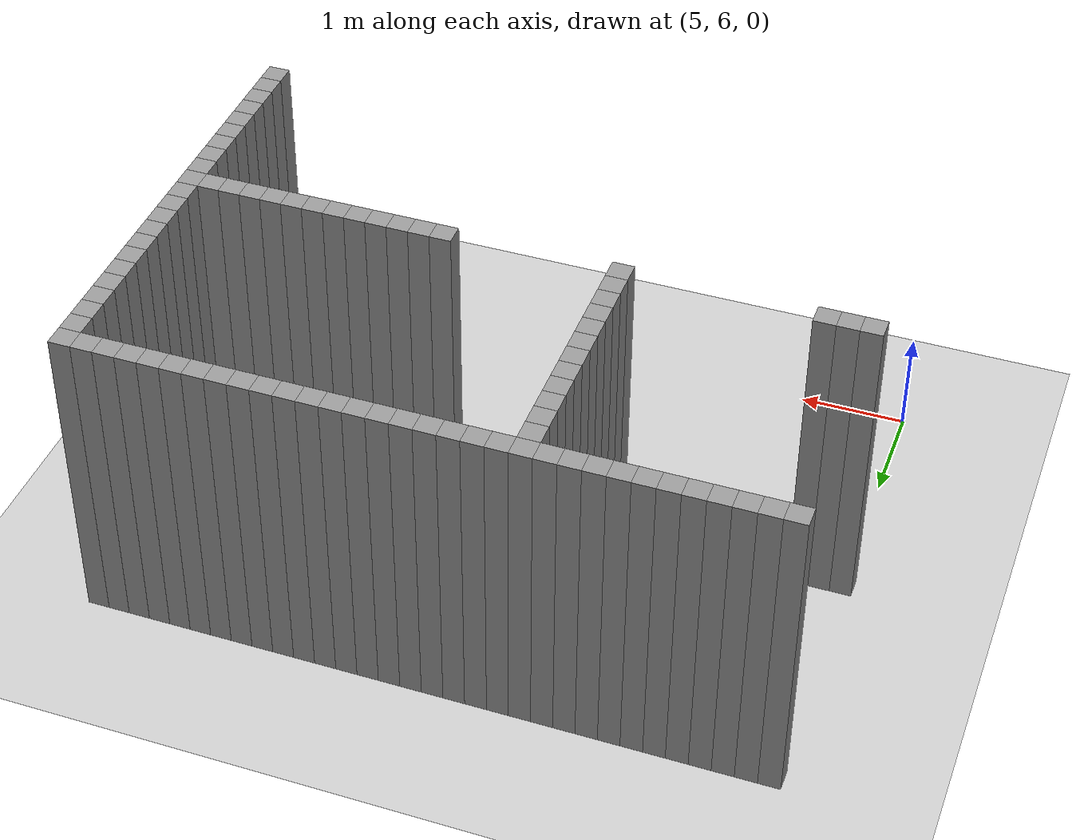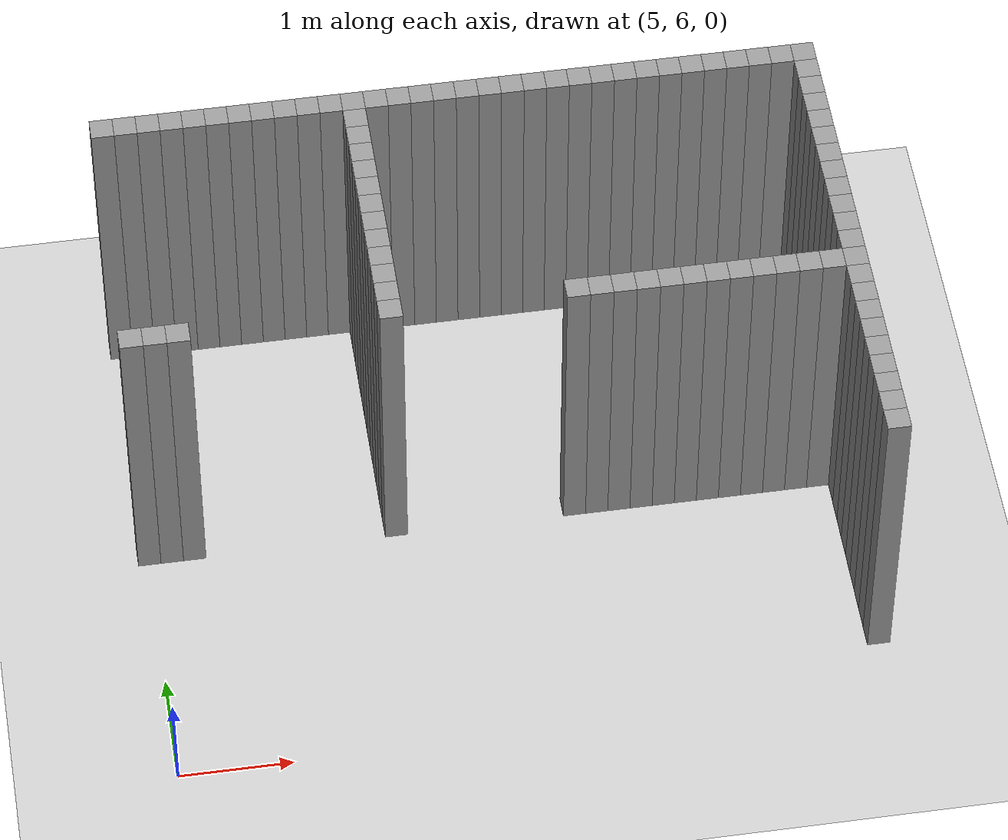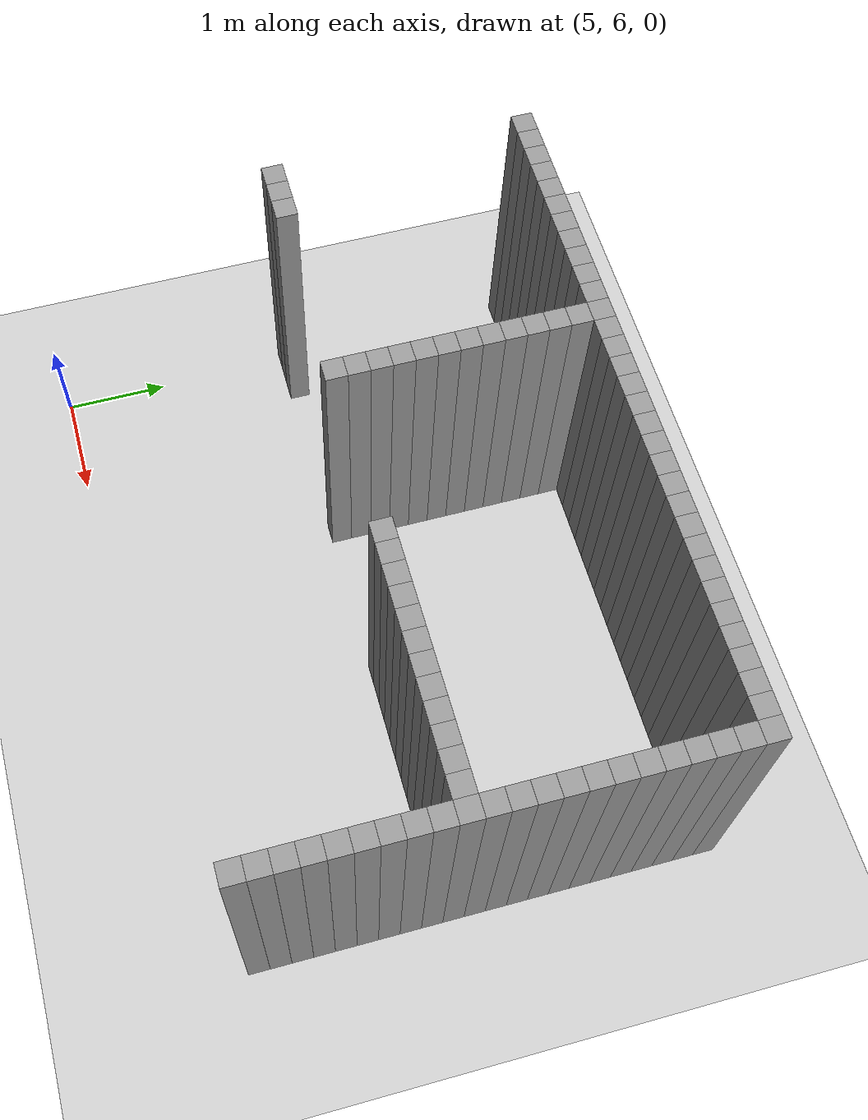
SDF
<sdf version="1.7">
 <world name="default">
  <model name="ground_plane">
   <static>1</static>
   <link name="link">
    <collision name="collision">
     <geometry><plane><normal>0 0 1</normal><size>100 100</size></plane></geometry>
     <surface>
      <contact><collide_bitmask>65535</collide_bitmask></contact>
      <friction><ode><mu>100</mu><mu2>50</mu2></ode></friction>
     </surface>
    </collision>
    <visual name="visual">
     <cast_shadows>0</cast_shadows>
     <geometry><plane><normal>0 0 1</normal><size>100 100</size></plane></geometry>
     <material>
      <script><uri>file://media/materials/scripts/gazebo.material</uri><name>Gazebo/Grey</name></script>
     </material>
    </visual>
   </link>
  </model>
  <model name="image49974">
   <pose>-1 -1 0 0 -0 0</pose>
   <link name="Wall_243">
    <collision name="Wall_243_Collision">
     <geometry><box><size>0.2 0.2 3</size></box></geometry>
     <pose>0 0 1.5 0 -0 0</pose>
    </collision>
    <visual name="Wall_243_Visual">
     <pose>0 0 1.5 0 -0 0</pose>
     <geometry><box><size>0.2 0.2 3</size></box></geometry>
     <material>
      <script><uri>file://media/materials/scripts/gazebo.material</uri><name>Gazebo/Grey</name></script>
      <ambient>1 1 1 1</ambient>
     </material>
     <meta><layer>0</layer></meta>
    </visual>
    <pose>6.0 9.4 0 0 -0 0</pose>
   </link>
   <link name="Wall_244">
    <collision name="Wall_244_Collision">
     <geometry><box><size>0.2 0.2 3</size></box></geometry>
     <pose>0 0 1.5 0 -0 0</pose>
    </collision>
    <visual name="Wall_244_Visual">
     <pose>0 0 1.5 0 -0 0</pose>
     <geometry><box><size>0.2 0.2 3</size></box></geometry>
     <material>
      <script><uri>file://media/materials/scripts/gazebo.material</uri><name>Gazebo/Grey</name></script>
      <ambient>1 1 1 1</ambient>
     </material>
     <meta><layer>0</layer></meta>
    </visual>
    <pose>6.0 11.8 0 0 -0 0</pose>
   </link>
   <link name="Wall_247">
    <collision name="Wall_247_Collision">
     <geometry><box><size>0.2 0.2 3</size></box></geometry>
     <pose>0 0 1.5 0 -0 0</pose>
    </collision>
    <visual name="Wall_247_Visual">
     <pose>0 0 1.5 0 -0 0</pose>
     <geometry><box><size>0.2 0.2 3</size></box></geometry>
     <material>
      <script><uri>file://media/materials/scripts/gazebo.material</uri><name>Gazebo/Grey</name></script>
      <ambient>1 1 1 1</ambient>
     </material>
     <meta><layer>0</layer></meta>
    </visual>
    <pose>6.2 9.4 0 0 -0 0</pose>
   </link>
   <link name="Wall_248">
    <collision name="Wall_248_Collision">
     <geometry><box><size>0.2 0.2 3</size></box></geometry>
     <pose>0 0 1.5 0 -0 0</pose>
    </collision>
    <visual name="Wall_248_Visual">
     <pose>0 0 1.5 0 -0 0</pose>
     <geometry><box><size>0.2 0.2 3</size></box></geometry>
     <material>
      <script><uri>file://media/materials/scripts/gazebo.material</uri><name>Gazebo/Grey</name></script>
      <ambient>1 1 1 1</ambient>
     </material>
     <meta><layer>0</layer></meta>
    </visual>
    <pose>6.2 11.8 0 0 -0 0</pose>
   </link>
   <link name="Wall_251">
    <collision name="Wall_251_Collision">
     <geometry><box><size>0.2 0.2 3</size></box></geometry>
     <pose>0 0 1.5 0 -0 0</pose>
    </collision>
    <visual name="Wall_251_Visual">
     <pose>0 0 1.5 0 -0 0</pose>
     <geometry><box><size>0.2 0.2 3</size></box></geometry>
     <material>
      <script><uri>file://media/materials/scripts/gazebo.material</uri><name>Gazebo/Grey</name></script>
      <ambient>1 1 1 1</ambient>
     </material>
     <meta><layer>0</layer></meta>
    </visual>
    <pose>6.4 9.4 0 0 -0 0</pose>
   </link>
   <link name="Wall_252">
    <collision name="Wall_252_Collision">
     <geometry><box><size>0.2 0.2 3</size></box></geometry>
     <pose>0 0 1.5 0 -0 0</pose>
    </collision>
    <visual name="Wall_252_Visual">
     <pose>0 0 1.5 0 -0 0</pose>
     <geometry><box><size>0.2 0.2 3</size></box></geometry>
     <material>
      <script><uri>file://media/materials/scripts/gazebo.material</uri><name>Gazebo/Grey</name></script>
      <ambient>1 1 1 1</ambient>
     </material>
     <meta><layer>0</layer></meta>
    </visual>
    <pose>6.4 11.8 0 0 -0 0</pose>
   </link>
   <link name="Wall_255">
    <collision name="Wall_255_Collision">
     <geometry><box><size>0.2 0.2 3</size></box></geometry>
     <pose>0 0 1.5 0 -0 0</pose>
    </collision>
    <visual name="Wall_255_Visual">
     <pose>0 0 1.5 0 -0 0</pose>
     <geometry><box><size>0.2 0.2 3</size></box></geometry>
     <material>
      <script><uri>file://media/materials/scripts/gazebo.material</uri><name>Gazebo/Grey</name></script>
      <ambient>1 1 1 1</ambient>
     </material>
     <meta><layer>0</layer></meta>
    </visual>
    <pose>6.6000000000000005 11.8 0 0 -0 0</pose>
   </link>
   <link name="Wall_259">
    <collision name="Wall_259_Collision">
     <geometry><box><size>0.2 0.2 3</size></box></geometry>
     <pose>0 0 1.5 0 -0 0</pose>
    </collision>
    <visual name="Wall_259_Visual">
     <pose>0 0 1.5 0 -0 0</pose>
     <geometry><box><size>0.2 0.2 3</size></box></geometry>
     <material>
      <script><uri>file://media/materials/scripts/gazebo.material</uri><name>Gazebo/Grey</name></script>
      <ambient>1 1 1 1</ambient>
     </material>
     <meta><layer>0</layer></meta>
    </visual>
    <pose>6.800000000000001 11.8 0 0 -0 0</pose>
   </link>
   <link name="Wall_263">
    <collision name="Wall_263_Collision">
     <geometry><box><size>0.2 0.2 3</size></box></geometry>
     <pose>0 0 1.5 0 -0 0</pose>
    </collision>
    <visual name="Wall_263_Visual">
     <pose>0 0 1.5 0 -0 0</pose>
     <geometry><box><size>0.2 0.2 3</size></box></geometry>
     <material>
      <script><uri>file://media/materials/scripts/gazebo.material</uri><name>Gazebo/Grey</name></script>
      <ambient>1 1 1 1</ambient>
     </material>
     <meta><layer>0</layer></meta>
    </visual>
    <pose>7.0 11.8 0 0 -0 0</pose>
   </link>
   <link name="Wall_282">
    <collision name="Wall_282_Collision">
     <geometry><box><size>0.2 0.2 3</size></box></geometry>
     <pose>0 0 1.5 0 -0 0</pose>
    </collision>
    <visual name="Wall_282_Visual">
     <pose>0 0 1.5 0 -0 0</pose>
     <geometry><box><size>0.2 0.2 3</size></box></geometry>
     <material>
      <script><uri>file://media/materials/scripts/gazebo.material</uri><name>Gazebo/Grey</name></script>
      <ambient>1 1 1 1</ambient>
     </material>
     <meta><layer>0</layer></meta>
    </visual>
    <pose>7.2 11.8 0 0 -0 0</pose>
   </link>
   <link name="Wall_287">
    <collision name="Wall_287_Collision">
     <geometry><box><size>0.2 0.2 3</size></box></geometry>
     <pose>0 0 1.5 0 -0 0</pose>
    </collision>
    <visual name="Wall_287_Visual">
     <pose>0 0 1.5 0 -0 0</pose>
     <geometry><box><size>0.2 0.2 3</size></box></geometry>
     <material>
      <script><uri>file://media/materials/scripts/gazebo.material</uri><name>Gazebo/Grey</name></script>
      <ambient>1 1 1 1</ambient>
     </material>
     <meta><layer>0</layer></meta>
    </visual>
    <pose>7.4 11.8 0 0 -0 0</pose>
   </link>
   <link name="Wall_292">
    <collision name="Wall_292_Collision">
     <geometry><box><size>0.2 0.2 3</size></box></geometry>
     <pose>0 0 1.5 0 -0 0</pose>
    </collision>
    <visual name="Wall_292_Visual">
     <pose>0 0 1.5 0 -0 0</pose>
     <geometry><box><size>0.2 0.2 3</size></box></geometry>
     <material>
      <script><uri>file://media/materials/scripts/gazebo.material</uri><name>Gazebo/Grey</name></script>
      <ambient>1 1 1 1</ambient>
     </material>
     <meta><layer>0</layer></meta>
    </visual>
    <pose>7.6000000000000005 11.8 0 0 -0 0</pose>
   </link>
   <link name="Wall_308">
    <collision name="Wall_308_Collision">
     <geometry><box><size>0.2 0.2 3</size></box></geometry>
     <pose>0 0 1.5 0 -0 0</pose>
    </collision>
    <visual name="Wall_308_Visual">
     <pose>0 0 1.5 0 -0 0</pose>
     <geometry><box><size>0.2 0.2 3</size></box></geometry>
     <material>
      <script><uri>file://media/materials/scripts/gazebo.material</uri><name>Gazebo/Grey</name></script>
      <ambient>1 1 1 1</ambient>
     </material>
     <meta><layer>0</layer></meta>
    </visual>
    <pose>7.800000000000001 11.8 0 0 -0 0</pose>
   </link>
   <link name="Wall_311">
    <collision name="Wall_311_Collision">
     <geometry><box><size>0.2 0.2 3</size></box></geometry>
     <pose>0 0 1.5 0 -0 0</pose>
    </collision>
    <visual name="Wall_311_Visual">
     <pose>0 0 1.5 0 -0 0</pose>
     <geometry><box><size>0.2 0.2 3</size></box></geometry>
     <material>
      <script><uri>file://media/materials/scripts/gazebo.material</uri><name>Gazebo/Grey</name></script>
      <ambient>1 1 1 1</ambient>
     </material>
     <meta><layer>0</layer></meta>
    </visual>
    <pose>8.0 11.8 0 0 -0 0</pose>
   </link>
   <link name="Wall_314">
    <collision name="Wall_314_Collision">
     <geometry><box><size>0.2 0.2 3</size></box></geometry>
     <pose>0 0 1.5 0 -0 0</pose>
    </collision>
    <visual name="Wall_314_Visual">
     <pose>0 0 1.5 0 -0 0</pose>
     <geometry><box><size>0.2 0.2 3</size></box></geometry>
     <material>
      <script><uri>file://media/materials/scripts/gazebo.material</uri><name>Gazebo/Grey</name></script>
      <ambient>1 1 1 1</ambient>
     </material>
     <meta><layer>0</layer></meta>
    </visual>
    <pose>8.200000000000001 9.4 0 0 -0 0</pose>
   </link>
   <link name="Wall_315">
    <collision name="Wall_315_Collision">
     <geometry><box><size>0.2 0.2 3</size></box></geometry>
     <pose>0 0 1.5 0 -0 0</pose>
    </collision>
    <visual name="Wall_315_Visual">
     <pose>0 0 1.5 0 -0 0</pose>
     <geometry><box><size>0.2 0.2 3</size></box></geometry>
     <material>
      <script><uri>file://media/materials/scripts/gazebo.material</uri><name>Gazebo/Grey</name></script>
      <ambient>1 1 1 1</ambient>
     </material>
     <meta><layer>0</layer></meta>
    </visual>
    <pose>8.200000000000001 9.600000000000001 0 0 -0 0</pose>
   </link>
   <link name="Wall_316">
    <collision name="Wall_316_Collision">
     <geometry><box><size>0.2 0.2 3</size></box></geometry>
     <pose>0 0 1.5 0 -0 0</pose>
    </collision>
    <visual name="Wall_316_Visual">
     <pose>0 0 1.5 0 -0 0</pose>
     <geometry><box><size>0.2 0.2 3</size></box></geometry>
     <material>
      <script><uri>file://media/materials/scripts/gazebo.material</uri><name>Gazebo/Grey</name></script>
      <ambient>1 1 1 1</ambient>
     </material>
     <meta><layer>0</layer></meta>
    </visual>
    <pose>8.200000000000001 9.8 0 0 -0 0</pose>
   </link>
   <link name="Wall_317">
    <collision name="Wall_317_Collision">
     <geometry><box><size>0.2 0.2 3</size></box></geometry>
     <pose>0 0 1.5 0 -0 0</pose>
    </collision>
    <visual name="Wall_317_Visual">
     <pose>0 0 1.5 0 -0 0</pose>
     <geometry><box><size>0.2 0.2 3</size></box></geometry>
     <material>
      <script><uri>file://media/materials/scripts/gazebo.material</uri><name>Gazebo/Grey</name></script>
      <ambient>1 1 1 1</ambient>
     </material>
     <meta><layer>0</layer></meta>
    </visual>
    <pose>8.200000000000001 10.0 0 0 -0 0</pose>
   </link>
   <link name="Wall_318">
    <collision name="Wall_318_Collision">
     <geometry><box><size>0.2 0.2 3</size></box></geometry>
     <pose>0 0 1.5 0 -0 0</pose>
    </collision>
    <visual name="Wall_318_Visual">
     <pose>0 0 1.5 0 -0 0</pose>
     <geometry><box><size>0.2 0.2 3</size></box></geometry>
     <material>
      <script><uri>file://media/materials/scripts/gazebo.material</uri><name>Gazebo/Grey</name></script>
      <ambient>1 1 1 1</ambient>
     </material>
     <meta><layer>0</layer></meta>
    </visual>
    <pose>8.200000000000001 10.200000000000001 0 0 -0 0</pose>
   </link>
   <link name="Wall_319">
    <collision name="Wall_319_Collision">
     <geometry><box><size>0.2 0.2 3</size></box></geometry>
     <pose>0 0 1.5 0 -0 0</pose>
    </collision>
    <visual name="Wall_319_Visual">
     <pose>0 0 1.5 0 -0 0</pose>
     <geometry><box><size>0.2 0.2 3</size></box></geometry>
     <material>
      <script><uri>file://media/materials/scripts/gazebo.material</uri><name>Gazebo/Grey</name></script>
      <ambient>1 1 1 1</ambient>
     </material>
     <meta><layer>0</layer></meta>
    </visual>
    <pose>8.200000000000001 10.4 0 0 -0 0</pose>
   </link>
   <link name="Wall_320">
    <collision name="Wall_320_Collision">
     <geometry><box><size>0.2 0.2 3</size></box></geometry>
     <pose>0 0 1.5 0 -0 0</pose>
    </collision>
    <visual name="Wall_320_Visual">
     <pose>0 0 1.5 0 -0 0</pose>
     <geometry><box><size>0.2 0.2 3</size></box></geometry>
     <material>
      <script><uri>file://media/materials/scripts/gazebo.material</uri><name>Gazebo/Grey</name></script>
      <ambient>1 1 1 1</ambient>
     </material>
     <meta><layer>0</layer></meta>
    </visual>
    <pose>8.200000000000001 10.600000000000001 0 0 -0 0</pose>
   </link>
   <link name="Wall_321">
    <collision name="Wall_321_Collision">
     <geometry><box><size>0.2 0.2 3</size></box></geometry>
     <pose>0 0 1.5 0 -0 0</pose>
    </collision>
    <visual name="Wall_321_Visual">
     <pose>0 0 1.5 0 -0 0</pose>
     <geometry><box><size>0.2 0.2 3</size></box></geometry>
     <material>
      <script><uri>file://media/materials/scripts/gazebo.material</uri><name>Gazebo/Grey</name></script>
      <ambient>1 1 1 1</ambient>
     </material>
     <meta><layer>0</layer></meta>
    </visual>
    <pose>8.200000000000001 10.8 0 0 -0 0</pose>
   </link>
   <link name="Wall_322">
    <collision name="Wall_322_Collision">
     <geometry><box><size>0.2 0.2 3</size></box></geometry>
     <pose>0 0 1.5 0 -0 0</pose>
    </collision>
    <visual name="Wall_322_Visual">
     <pose>0 0 1.5 0 -0 0</pose>
     <geometry><box><size>0.2 0.2 3</size></box></geometry>
     <material>
      <script><uri>file://media/materials/scripts/gazebo.material</uri><name>Gazebo/Grey</name></script>
      <ambient>1 1 1 1</ambient>
     </material>
     <meta><layer>0</layer></meta>
    </visual>
    <pose>8.200000000000001 11.0 0 0 -0 0</pose>
   </link>
   <link name="Wall_323">
    <collision name="Wall_323_Collision">
     <geometry><box><size>0.2 0.2 3</size></box></geometry>
     <pose>0 0 1.5 0 -0 0</pose>
    </collision>
    <visual name="Wall_323_Visual">
     <pose>0 0 1.5 0 -0 0</pose>
     <geometry><box><size>0.2 0.2 3</size></box></geometry>
     <material>
      <script><uri>file://media/materials/scripts/gazebo.material</uri><name>Gazebo/Grey</name></script>
      <ambient>1 1 1 1</ambient>
     </material>
     <meta><layer>0</layer></meta>
    </visual>
    <pose>8.200000000000001 11.200000000000001 0 0 -0 0</pose>
   </link>
   <link name="Wall_324">
    <collision name="Wall_324_Collision">
     <geometry><box><size>0.2 0.2 3</size></box></geometry>
     <pose>0 0 1.5 0 -0 0</pose>
    </collision>
    <visual name="Wall_324_Visual">
     <pose>0 0 1.5 0 -0 0</pose>
     <geometry><box><size>0.2 0.2 3</size></box></geometry>
     <material>
      <script><uri>file://media/materials/scripts/gazebo.material</uri><name>Gazebo/Grey</name></script>
      <ambient>1 1 1 1</ambient>
     </material>
     <meta><layer>0</layer></meta>
    </visual>
    <pose>8.200000000000001 11.4 0 0 -0 0</pose>
   </link>
   <link name="Wall_325">
    <collision name="Wall_325_Collision">
     <geometry><box><size>0.2 0.2 3</size></box></geometry>
     <pose>0 0 1.5 0 -0 0</pose>
    </collision>
    <visual name="Wall_325_Visual">
     <pose>0 0 1.5 0 -0 0</pose>
     <geometry><box><size>0.2 0.2 3</size></box></geometry>
     <material>
      <script><uri>file://media/materials/scripts/gazebo.material</uri><name>Gazebo/Grey</name></script>
      <ambient>1 1 1 1</ambient>
     </material>
     <meta><layer>0</layer></meta>
    </visual>
    <pose>8.200000000000001 11.600000000000001 0 0 -0 0</pose>
   </link>
   <link name="Wall_326">
    <collision name="Wall_326_Collision">
     <geometry><box><size>0.2 0.2 3</size></box></geometry>
     <pose>0 0 1.5 0 -0 0</pose>
    </collision>
    <visual name="Wall_326_Visual">
     <pose>0 0 1.5 0 -0 0</pose>
     <geometry><box><size>0.2 0.2 3</size></box></geometry>
     <material>
      <script><uri>file://media/materials/scripts/gazebo.material</uri><name>Gazebo/Grey</name></script>
      <ambient>1 1 1 1</ambient>
     </material>
     <meta><layer>0</layer></meta>
    </visual>
    <pose>8.200000000000001 11.8 0 0 -0 0</pose>
   </link>
   <link name="Wall_329">
    <collision name="Wall_329_Collision">
     <geometry><box><size>0.2 0.2 3</size></box></geometry>
     <pose>0 0 1.5 0 -0 0</pose>
    </collision>
    <visual name="Wall_329_Visual">
     <pose>0 0 1.5 0 -0 0</pose>
     <geometry><box><size>0.2 0.2 3</size></box></geometry>
     <material>
      <script><uri>file://media/materials/scripts/gazebo.material</uri><name>Gazebo/Grey</name></script>
      <ambient>1 1 1 1</ambient>
     </material>
     <meta><layer>0</layer></meta>
    </visual>
    <pose>8.4 11.8 0 0 -0 0</pose>
   </link>
   <link name="Wall_331">
    <collision name="Wall_331_Collision">
     <geometry><box><size>0.2 0.2 3</size></box></geometry>
     <pose>0 0 1.5 0 -0 0</pose>
    </collision>
    <visual name="Wall_331_Visual">
     <pose>0 0 1.5 0 -0 0</pose>
     <geometry><box><size>0.2 0.2 3</size></box></geometry>
     <material>
      <script><uri>file://media/materials/scripts/gazebo.material</uri><name>Gazebo/Grey</name></script>
      <ambient>1 1 1 1</ambient>
     </material>
     <meta><layer>0</layer></meta>
    </visual>
    <pose>8.6 11.8 0 0 -0 0</pose>
   </link>
   <link name="Wall_333">
    <collision name="Wall_333_Collision">
     <geometry><box><size>0.2 0.2 3</size></box></geometry>
     <pose>0 0 1.5 0 -0 0</pose>
    </collision>
    <visual name="Wall_333_Visual">
     <pose>0 0 1.5 0 -0 0</pose>
     <geometry><box><size>0.2 0.2 3</size></box></geometry>
     <material>
      <script><uri>file://media/materials/scripts/gazebo.material</uri><name>Gazebo/Grey</name></script>
      <ambient>1 1 1 1</ambient>
     </material>
     <meta><layer>0</layer></meta>
    </visual>
    <pose>8.8 11.8 0 0 -0 0</pose>
   </link>
   <link name="Wall_335">
    <collision name="Wall_335_Collision">
     <geometry><box><size>0.2 0.2 3</size></box></geometry>
     <pose>0 0 1.5 0 -0 0</pose>
    </collision>
    <visual name="Wall_335_Visual">
     <pose>0 0 1.5 0 -0 0</pose>
     <geometry><box><size>0.2 0.2 3</size></box></geometry>
     <material>
      <script><uri>file://media/materials/scripts/gazebo.material</uri><name>Gazebo/Grey</name></script>
      <ambient>1 1 1 1</ambient>
     </material>
     <meta><layer>0</layer></meta>
    </visual>
    <pose>9.0 11.8 0 0 -0 0</pose>
   </link>
   <link name="Wall_337">
    <collision name="Wall_337_Collision">
     <geometry><box><size>0.2 0.2 3</size></box></geometry>
     <pose>0 0 1.5 0 -0 0</pose>
    </collision>
    <visual name="Wall_337_Visual">
     <pose>0 0 1.5 0 -0 0</pose>
     <geometry><box><size>0.2 0.2 3</size></box></geometry>
     <material>
      <script><uri>file://media/materials/scripts/gazebo.material</uri><name>Gazebo/Grey</name></script>
      <ambient>1 1 1 1</ambient>
     </material>
     <meta><layer>0</layer></meta>
    </visual>
    <pose>9.200000000000001 11.8 0 0 -0 0</pose>
   </link>
   <link name="Wall_339">
    <collision name="Wall_339_Collision">
     <geometry><box><size>0.2 0.2 3</size></box></geometry>
     <pose>0 0 1.5 0 -0 0</pose>
    </collision>
    <visual name="Wall_339_Visual">
     <pose>0 0 1.5 0 -0 0</pose>
     <geometry><box><size>0.2 0.2 3</size></box></geometry>
     <material>
      <script><uri>file://media/materials/scripts/gazebo.material</uri><name>Gazebo/Grey</name></script>
      <ambient>1 1 1 1</ambient>
     </material>
     <meta><layer>0</layer></meta>
    </visual>
    <pose>9.4 11.8 0 0 -0 0</pose>
   </link>
   <link name="Wall_341">
    <collision name="Wall_341_Collision">
     <geometry><box><size>0.2 0.2 3</size></box></geometry>
     <pose>0 0 1.5 0 -0 0</pose>
    </collision>
    <visual name="Wall_341_Visual">
     <pose>0 0 1.5 0 -0 0</pose>
     <geometry><box><size>0.2 0.2 3</size></box></geometry>
     <material>
      <script><uri>file://media/materials/scripts/gazebo.material</uri><name>Gazebo/Grey</name></script>
      <ambient>1 1 1 1</ambient>
     </material>
     <meta><layer>0</layer></meta>
    </visual>
    <pose>9.600000000000001 11.8 0 0 -0 0</pose>
   </link>
   <link name="Wall_343">
    <collision name="Wall_343_Collision">
     <geometry><box><size>0.2 0.2 3</size></box></geometry>
     <pose>0 0 1.5 0 -0 0</pose>
    </collision>
    <visual name="Wall_343_Visual">
     <pose>0 0 1.5 0 -0 0</pose>
     <geometry><box><size>0.2 0.2 3</size></box></geometry>
     <material>
      <script><uri>file://media/materials/scripts/gazebo.material</uri><name>Gazebo/Grey</name></script>
      <ambient>1 1 1 1</ambient>
     </material>
     <meta><layer>0</layer></meta>
    </visual>
    <pose>9.8 9.4 0 0 -0 0</pose>
   </link>
   <link name="Wall_344">
    <collision name="Wall_344_Collision">
     <geometry><box><size>0.2 0.2 3</size></box></geometry>
     <pose>0 0 1.5 0 -0 0</pose>
    </collision>
    <visual name="Wall_344_Visual">
     <pose>0 0 1.5 0 -0 0</pose>
     <geometry><box><size>0.2 0.2 3</size></box></geometry>
     <material>
      <script><uri>file://media/materials/scripts/gazebo.material</uri><name>Gazebo/Grey</name></script>
      <ambient>1 1 1 1</ambient>
     </material>
     <meta><layer>0</layer></meta>
    </visual>
    <pose>9.8 11.8 0 0 -0 0</pose>
   </link>
   <link name="Wall_352">
    <collision name="Wall_352_Collision">
     <geometry><box><size>0.2 0.2 3</size></box></geometry>
     <pose>0 0 1.5 0 -0 0</pose>
    </collision>
    <visual name="Wall_352_Visual">
     <pose>0 0 1.5 0 -0 0</pose>
     <geometry><box><size>0.2 0.2 3</size></box></geometry>
     <material>
      <script><uri>file://media/materials/scripts/gazebo.material</uri><name>Gazebo/Grey</name></script>
      <ambient>1 1 1 1</ambient>
     </material>
     <meta><layer>0</layer></meta>
    </visual>
    <pose>10.0 9.4 0 0 -0 0</pose>
   </link>
   <link name="Wall_353">
    <collision name="Wall_353_Collision">
     <geometry><box><size>0.2 0.2 3</size></box></geometry>
     <pose>0 0 1.5 0 -0 0</pose>
    </collision>
    <visual name="Wall_353_Visual">
     <pose>0 0 1.5 0 -0 0</pose>
     <geometry><box><size>0.2 0.2 3</size></box></geometry>
     <material>
      <script><uri>file://media/materials/scripts/gazebo.material</uri><name>Gazebo/Grey</name></script>
      <ambient>1 1 1 1</ambient>
     </material>
     <meta><layer>0</layer></meta>
    </visual>
    <pose>10.0 11.8 0 0 -0 0</pose>
   </link>
   <link name="Wall_358">
    <collision name="Wall_358_Collision">
     <geometry><box><size>0.2 0.2 3</size></box></geometry>
     <pose>0 0 1.5 0 -0 0</pose>
    </collision>
    <visual name="Wall_358_Visual">
     <pose>0 0 1.5 0 -0 0</pose>
     <geometry><box><size>0.2 0.2 3</size></box></geometry>
     <material>
      <script><uri>file://media/materials/scripts/gazebo.material</uri><name>Gazebo/Grey</name></script>
      <ambient>1 1 1 1</ambient>
     </material>
     <meta><layer>0</layer></meta>
    </visual>
    <pose>10.200000000000001 9.4 0 0 -0 0</pose>
   </link>
   <link name="Wall_359">
    <collision name="Wall_359_Collision">
     <geometry><box><size>0.2 0.2 3</size></box></geometry>
     <pose>0 0 1.5 0 -0 0</pose>
    </collision>
    <visual name="Wall_359_Visual">
     <pose>0 0 1.5 0 -0 0</pose>
     <geometry><box><size>0.2 0.2 3</size></box></geometry>
     <material>
      <script><uri>file://media/materials/scripts/gazebo.material</uri><name>Gazebo/Grey</name></script>
      <ambient>1 1 1 1</ambient>
     </material>
     <meta><layer>0</layer></meta>
    </visual>
    <pose>10.200000000000001 11.8 0 0 -0 0</pose>
   </link>
   <link name="Wall_379">
    <collision name="Wall_379_Collision">
     <geometry><box><size>0.2 0.2 3</size></box></geometry>
     <pose>0 0 1.5 0 -0 0</pose>
    </collision>
    <visual name="Wall_379_Visual">
     <pose>0 0 1.5 0 -0 0</pose>
     <geometry><box><size>0.2 0.2 3</size></box></geometry>
     <material>
      <script><uri>file://media/materials/scripts/gazebo.material</uri><name>Gazebo/Grey</name></script>
      <ambient>1 1 1 1</ambient>
     </material>
     <meta><layer>0</layer></meta>
    </visual>
    <pose>10.4 9.4 0 0 -0 0</pose>
   </link>
   <link name="Wall_380">
    <collision name="Wall_380_Collision">
     <geometry><box><size>0.2 0.2 3</size></box></geometry>
     <pose>0 0 1.5 0 -0 0</pose>
    </collision>
    <visual name="Wall_380_Visual">
     <pose>0 0 1.5 0 -0 0</pose>
     <geometry><box><size>0.2 0.2 3</size></box></geometry>
     <material>
      <script><uri>file://media/materials/scripts/gazebo.material</uri><name>Gazebo/Grey</name></script>
      <ambient>1 1 1 1</ambient>
     </material>
     <meta><layer>0</layer></meta>
    </visual>
    <pose>10.4 11.8 0 0 -0 0</pose>
   </link>
   <link name="Wall_384">
    <collision name="Wall_384_Collision">
     <geometry><box><size>0.2 0.2 3</size></box></geometry>
     <pose>0 0 1.5 0 -0 0</pose>
    </collision>
    <visual name="Wall_384_Visual">
     <pose>0 0 1.5 0 -0 0</pose>
     <geometry><box><size>0.2 0.2 3</size></box></geometry>
     <material>
      <script><uri>file://media/materials/scripts/gazebo.material</uri><name>Gazebo/Grey</name></script>
      <ambient>1 1 1 1</ambient>
     </material>
     <meta><layer>0</layer></meta>
    </visual>
    <pose>10.600000000000001 9.4 0 0 -0 0</pose>
   </link>
   <link name="Wall_385">
    <collision name="Wall_385_Collision">
     <geometry><box><size>0.2 0.2 3</size></box></geometry>
     <pose>0 0 1.5 0 -0 0</pose>
    </collision>
    <visual name="Wall_385_Visual">
     <pose>0 0 1.5 0 -0 0</pose>
     <geometry><box><size>0.2 0.2 3</size></box></geometry>
     <material>
      <script><uri>file://media/materials/scripts/gazebo.material</uri><name>Gazebo/Grey</name></script>
      <ambient>1 1 1 1</ambient>
     </material>
     <meta><layer>0</layer></meta>
    </visual>
    <pose>10.600000000000001 11.8 0 0 -0 0</pose>
   </link>
   <link name="Wall_389">
    <collision name="Wall_389_Collision">
     <geometry><box><size>0.2 0.2 3</size></box></geometry>
     <pose>0 0 1.5 0 -0 0</pose>
    </collision>
    <visual name="Wall_389_Visual">
     <pose>0 0 1.5 0 -0 0</pose>
     <geometry><box><size>0.2 0.2 3</size></box></geometry>
     <material>
      <script><uri>file://media/materials/scripts/gazebo.material</uri><name>Gazebo/Grey</name></script>
      <ambient>1 1 1 1</ambient>
     </material>
     <meta><layer>0</layer></meta>
    </visual>
    <pose>10.8 9.4 0 0 -0 0</pose>
   </link>
   <link name="Wall_390">
    <collision name="Wall_390_Collision">
     <geometry><box><size>0.2 0.2 3</size></box></geometry>
     <pose>0 0 1.5 0 -0 0</pose>
    </collision>
    <visual name="Wall_390_Visual">
     <pose>0 0 1.5 0 -0 0</pose>
     <geometry><box><size>0.2 0.2 3</size></box></geometry>
     <material>
      <script><uri>file://media/materials/scripts/gazebo.material</uri><name>Gazebo/Grey</name></script>
      <ambient>1 1 1 1</ambient>
     </material>
     <meta><layer>0</layer></meta>
    </visual>
    <pose>10.8 11.8 0 0 -0 0</pose>
   </link>
   <link name="Wall_394">
    <collision name="Wall_394_Collision">
     <geometry><box><size>0.2 0.2 3</size></box></geometry>
     <pose>0 0 1.5 0 -0 0</pose>
    </collision>
    <visual name="Wall_394_Visual">
     <pose>0 0 1.5 0 -0 0</pose>
     <geometry><box><size>0.2 0.2 3</size></box></geometry>
     <material>
      <script><uri>file://media/materials/scripts/gazebo.material</uri><name>Gazebo/Grey</name></script>
      <ambient>1 1 1 1</ambient>
     </material>
     <meta><layer>0</layer></meta>
    </visual>
    <pose>11.0 9.4 0 0 -0 0</pose>
   </link>
   <link name="Wall_395">
    <collision name="Wall_395_Collision">
     <geometry><box><size>0.2 0.2 3</size></box></geometry>
     <pose>0 0 1.5 0 -0 0</pose>
    </collision>
    <visual name="Wall_395_Visual">
     <pose>0 0 1.5 0 -0 0</pose>
     <geometry><box><size>0.2 0.2 3</size></box></geometry>
     <material>
      <script><uri>file://media/materials/scripts/gazebo.material</uri><name>Gazebo/Grey</name></script>
      <ambient>1 1 1 1</ambient>
     </material>
     <meta><layer>0</layer></meta>
    </visual>
    <pose>11.0 11.8 0 0 -0 0</pose>
   </link>
   <link name="Wall_399">
    <collision name="Wall_399_Collision">
     <geometry><box><size>0.2 0.2 3</size></box></geometry>
     <pose>0 0 1.5 0 -0 0</pose>
    </collision>
    <visual name="Wall_399_Visual">
     <pose>0 0 1.5 0 -0 0</pose>
     <geometry><box><size>0.2 0.2 3</size></box></geometry>
     <material>
      <script><uri>file://media/materials/scripts/gazebo.material</uri><name>Gazebo/Grey</name></script>
      <ambient>1 1 1 1</ambient>
     </material>
     <meta><layer>0</layer></meta>
    </visual>
    <pose>11.200000000000001 9.4 0 0 -0 0</pose>
   </link>
   <link name="Wall_400">
    <collision name="Wall_400_Collision">
     <geometry><box><size>0.2 0.2 3</size></box></geometry>
     <pose>0 0 1.5 0 -0 0</pose>
    </collision>
    <visual name="Wall_400_Visual">
     <pose>0 0 1.5 0 -0 0</pose>
     <geometry><box><size>0.2 0.2 3</size></box></geometry>
     <material>
      <script><uri>file://media/materials/scripts/gazebo.material</uri><name>Gazebo/Grey</name></script>
      <ambient>1 1 1 1</ambient>
     </material>
     <meta><layer>0</layer></meta>
    </visual>
    <pose>11.200000000000001 11.8 0 0 -0 0</pose>
   </link>
   <link name="Wall_404">
    <collision name="Wall_404_Collision">
     <geometry><box><size>0.2 0.2 3</size></box></geometry>
     <pose>0 0 1.5 0 -0 0</pose>
    </collision>
    <visual name="Wall_404_Visual">
     <pose>0 0 1.5 0 -0 0</pose>
     <geometry><box><size>0.2 0.2 3</size></box></geometry>
     <material>
      <script><uri>file://media/materials/scripts/gazebo.material</uri><name>Gazebo/Grey</name></script>
      <ambient>1 1 1 1</ambient>
     </material>
     <meta><layer>0</layer></meta>
    </visual>
    <pose>11.4 9.4 0 0 -0 0</pose>
   </link>
   <link name="Wall_405">
    <collision name="Wall_405_Collision">
     <geometry><box><size>0.2 0.2 3</size></box></geometry>
     <pose>0 0 1.5 0 -0 0</pose>
    </collision>
    <visual name="Wall_405_Visual">
     <pose>0 0 1.5 0 -0 0</pose>
     <geometry><box><size>0.2 0.2 3</size></box></geometry>
     <material>
      <script><uri>file://media/materials/scripts/gazebo.material</uri><name>Gazebo/Grey</name></script>
      <ambient>1 1 1 1</ambient>
     </material>
     <meta><layer>0</layer></meta>
    </visual>
    <pose>11.4 11.8 0 0 -0 0</pose>
   </link>
   <link name="Wall_409">
    <collision name="Wall_409_Collision">
     <geometry><box><size>0.2 0.2 3</size></box></geometry>
     <pose>0 0 1.5 0 -0 0</pose>
    </collision>
    <visual name="Wall_409_Visual">
     <pose>0 0 1.5 0 -0 0</pose>
     <geometry><box><size>0.2 0.2 3</size></box></geometry>
     <material>
      <script><uri>file://media/materials/scripts/gazebo.material</uri><name>Gazebo/Grey</name></script>
      <ambient>1 1 1 1</ambient>
     </material>
     <meta><layer>0</layer></meta>
    </visual>
    <pose>11.600000000000001 9.4 0 0 -0 0</pose>
   </link>
   <link name="Wall_410">
    <collision name="Wall_410_Collision">
     <geometry><box><size>0.2 0.2 3</size></box></geometry>
     <pose>0 0 1.5 0 -0 0</pose>
    </collision>
    <visual name="Wall_410_Visual">
     <pose>0 0 1.5 0 -0 0</pose>
     <geometry><box><size>0.2 0.2 3</size></box></geometry>
     <material>
      <script><uri>file://media/materials/scripts/gazebo.material</uri><name>Gazebo/Grey</name></script>
      <ambient>1 1 1 1</ambient>
     </material>
     <meta><layer>0</layer></meta>
    </visual>
    <pose>11.600000000000001 11.8 0 0 -0 0</pose>
   </link>
   <link name="Wall_414">
    <collision name="Wall_414_Collision">
     <geometry><box><size>0.2 0.2 3</size></box></geometry>
     <pose>0 0 1.5 0 -0 0</pose>
    </collision>
    <visual name="Wall_414_Visual">
     <pose>0 0 1.5 0 -0 0</pose>
     <geometry><box><size>0.2 0.2 3</size></box></geometry>
     <material>
      <script><uri>file://media/materials/scripts/gazebo.material</uri><name>Gazebo/Grey</name></script>
      <ambient>1 1 1 1</ambient>
     </material>
     <meta><layer>0</layer></meta>
    </visual>
    <pose>11.8 9.4 0 0 -0 0</pose>
   </link>
   <link name="Wall_415">
    <collision name="Wall_415_Collision">
     <geometry><box><size>0.2 0.2 3</size></box></geometry>
     <pose>0 0 1.5 0 -0 0</pose>
    </collision>
    <visual name="Wall_415_Visual">
     <pose>0 0 1.5 0 -0 0</pose>
     <geometry><box><size>0.2 0.2 3</size></box></geometry>
     <material>
      <script><uri>file://media/materials/scripts/gazebo.material</uri><name>Gazebo/Grey</name></script>
      <ambient>1 1 1 1</ambient>
     </material>
     <meta><layer>0</layer></meta>
    </visual>
    <pose>11.8 11.8 0 0 -0 0</pose>
   </link>
   <link name="Wall_419">
    <collision name="Wall_419_Collision">
     <geometry><box><size>0.2 0.2 3</size></box></geometry>
     <pose>0 0 1.5 0 -0 0</pose>
    </collision>
    <visual name="Wall_419_Visual">
     <pose>0 0 1.5 0 -0 0</pose>
     <geometry><box><size>0.2 0.2 3</size></box></geometry>
     <material>
      <script><uri>file://media/materials/scripts/gazebo.material</uri><name>Gazebo/Grey</name></script>
      <ambient>1 1 1 1</ambient>
     </material>
     <meta><layer>0</layer></meta>
    </visual>
    <pose>12.0 9.4 0 0 -0 0</pose>
   </link>
   <link name="Wall_420">
    <collision name="Wall_420_Collision">
     <geometry><box><size>0.2 0.2 3</size></box></geometry>
     <pose>0 0 1.5 0 -0 0</pose>
    </collision>
    <visual name="Wall_420_Visual">
     <pose>0 0 1.5 0 -0 0</pose>
     <geometry><box><size>0.2 0.2 3</size></box></geometry>
     <material>
      <script><uri>file://media/materials/scripts/gazebo.material</uri><name>Gazebo/Grey</name></script>
      <ambient>1 1 1 1</ambient>
     </material>
     <meta><layer>0</layer></meta>
    </visual>
    <pose>12.0 11.8 0 0 -0 0</pose>
   </link>
   <link name="Wall_459">
    <collision name="Wall_459_Collision">
     <geometry><box><size>0.2 0.2 3</size></box></geometry>
     <pose>0 0 1.5 0 -0 0</pose>
    </collision>
    <visual name="Wall_459_Visual">
     <pose>0 0 1.5 0 -0 0</pose>
     <geometry><box><size>0.2 0.2 3</size></box></geometry>
     <material>
      <script><uri>file://media/materials/scripts/gazebo.material</uri><name>Gazebo/Grey</name></script>
      <ambient>1 1 1 1</ambient>
     </material>
     <meta><layer>0</layer></meta>
    </visual>
    <pose>12.200000000000001 7.6000000000000005 0 0 -0 0</pose>
   </link>
   <link name="Wall_460">
    <collision name="Wall_460_Collision">
     <geometry><box><size>0.2 0.2 3</size></box></geometry>
     <pose>0 0 1.5 0 -0 0</pose>
    </collision>
    <visual name="Wall_460_Visual">
     <pose>0 0 1.5 0 -0 0</pose>
     <geometry><box><size>0.2 0.2 3</size></box></geometry>
     <material>
      <script><uri>file://media/materials/scripts/gazebo.material</uri><name>Gazebo/Grey</name></script>
      <ambient>1 1 1 1</ambient>
     </material>
     <meta><layer>0</layer></meta>
    </visual>
    <pose>12.200000000000001 7.800000000000001 0 0 -0 0</pose>
   </link>
   <link name="Wall_461">
    <collision name="Wall_461_Collision">
     <geometry><box><size>0.2 0.2 3</size></box></geometry>
     <pose>0 0 1.5 0 -0 0</pose>
    </collision>
    <visual name="Wall_461_Visual">
     <pose>0 0 1.5 0 -0 0</pose>
     <geometry><box><size>0.2 0.2 3</size></box></geometry>
     <material>
      <script><uri>file://media/materials/scripts/gazebo.material</uri><name>Gazebo/Grey</name></script>
      <ambient>1 1 1 1</ambient>
     </material>
     <meta><layer>0</layer></meta>
    </visual>
    <pose>12.200000000000001 8.0 0 0 -0 0</pose>
   </link>
   <link name="Wall_462">
    <collision name="Wall_462_Collision">
     <geometry><box><size>0.2 0.2 3</size></box></geometry>
     <pose>0 0 1.5 0 -0 0</pose>
    </collision>
    <visual name="Wall_462_Visual">
     <pose>0 0 1.5 0 -0 0</pose>
     <geometry><box><size>0.2 0.2 3</size></box></geometry>
     <material>
      <script><uri>file://media/materials/scripts/gazebo.material</uri><name>Gazebo/Grey</name></script>
      <ambient>1 1 1 1</ambient>
     </material>
     <meta><layer>0</layer></meta>
    </visual>
    <pose>12.200000000000001 8.200000000000001 0 0 -0 0</pose>
   </link>
   <link name="Wall_463">
    <collision name="Wall_463_Collision">
     <geometry><box><size>0.2 0.2 3</size></box></geometry>
     <pose>0 0 1.5 0 -0 0</pose>
    </collision>
    <visual name="Wall_463_Visual">
     <pose>0 0 1.5 0 -0 0</pose>
     <geometry><box><size>0.2 0.2 3</size></box></geometry>
     <material>
      <script><uri>file://media/materials/scripts/gazebo.material</uri><name>Gazebo/Grey</name></script>
      <ambient>1 1 1 1</ambient>
     </material>
     <meta><layer>0</layer></meta>
    </visual>
    <pose>12.200000000000001 8.4 0 0 -0 0</pose>
   </link>
   <link name="Wall_464">
    <collision name="Wall_464_Collision">
     <geometry><box><size>0.2 0.2 3</size></box></geometry>
     <pose>0 0 1.5 0 -0 0</pose>
    </collision>
    <visual name="Wall_464_Visual">
     <pose>0 0 1.5 0 -0 0</pose>
     <geometry><box><size>0.2 0.2 3</size></box></geometry>
     <material>
      <script><uri>file://media/materials/scripts/gazebo.material</uri><name>Gazebo/Grey</name></script>
      <ambient>1 1 1 1</ambient>
     </material>
     <meta><layer>0</layer></meta>
    </visual>
    <pose>12.200000000000001 8.6 0 0 -0 0</pose>
   </link>
   <link name="Wall_465">
    <collision name="Wall_465_Collision">
     <geometry><box><size>0.2 0.2 3</size></box></geometry>
     <pose>0 0 1.5 0 -0 0</pose>
    </collision>
    <visual name="Wall_465_Visual">
     <pose>0 0 1.5 0 -0 0</pose>
     <geometry><box><size>0.2 0.2 3</size></box></geometry>
     <material>
      <script><uri>file://media/materials/scripts/gazebo.material</uri><name>Gazebo/Grey</name></script>
      <ambient>1 1 1 1</ambient>
     </material>
     <meta><layer>0</layer></meta>
    </visual>
    <pose>12.200000000000001 8.8 0 0 -0 0</pose>
   </link>
   <link name="Wall_466">
    <collision name="Wall_466_Collision">
     <geometry><box><size>0.2 0.2 3</size></box></geometry>
     <pose>0 0 1.5 0 -0 0</pose>
    </collision>
    <visual name="Wall_466_Visual">
     <pose>0 0 1.5 0 -0 0</pose>
     <geometry><box><size>0.2 0.2 3</size></box></geometry>
     <material>
      <script><uri>file://media/materials/scripts/gazebo.material</uri><name>Gazebo/Grey</name></script>
      <ambient>1 1 1 1</ambient>
     </material>
     <meta><layer>0</layer></meta>
    </visual>
    <pose>12.200000000000001 9.0 0 0 -0 0</pose>
   </link>
   <link name="Wall_467">
    <collision name="Wall_467_Collision">
     <geometry><box><size>0.2 0.2 3</size></box></geometry>
     <pose>0 0 1.5 0 -0 0</pose>
    </collision>
    <visual name="Wall_467_Visual">
     <pose>0 0 1.5 0 -0 0</pose>
     <geometry><box><size>0.2 0.2 3</size></box></geometry>
     <material>
      <script><uri>file://media/materials/scripts/gazebo.material</uri><name>Gazebo/Grey</name></script>
      <ambient>1 1 1 1</ambient>
     </material>
     <meta><layer>0</layer></meta>
    </visual>
    <pose>12.200000000000001 9.200000000000001 0 0 -0 0</pose>
   </link>
   <link name="Wall_468">
    <collision name="Wall_468_Collision">
     <geometry><box><size>0.2 0.2 3</size></box></geometry>
     <pose>0 0 1.5 0 -0 0</pose>
    </collision>
    <visual name="Wall_468_Visual">
     <pose>0 0 1.5 0 -0 0</pose>
     <geometry><box><size>0.2 0.2 3</size></box></geometry>
     <material>
      <script><uri>file://media/materials/scripts/gazebo.material</uri><name>Gazebo/Grey</name></script>
      <ambient>1 1 1 1</ambient>
     </material>
     <meta><layer>0</layer></meta>
    </visual>
    <pose>12.200000000000001 9.4 0 0 -0 0</pose>
   </link>
   <link name="Wall_469">
    <collision name="Wall_469_Collision">
     <geometry><box><size>0.2 0.2 3</size></box></geometry>
     <pose>0 0 1.5 0 -0 0</pose>
    </collision>
    <visual name="Wall_469_Visual">
     <pose>0 0 1.5 0 -0 0</pose>
     <geometry><box><size>0.2 0.2 3</size></box></geometry>
     <material>
      <script><uri>file://media/materials/scripts/gazebo.material</uri><name>Gazebo/Grey</name></script>
      <ambient>1 1 1 1</ambient>
     </material>
     <meta><layer>0</layer></meta>
    </visual>
    <pose>12.200000000000001 9.600000000000001 0 0 -0 0</pose>
   </link>
   <link name="Wall_470">
    <collision name="Wall_470_Collision">
     <geometry><box><size>0.2 0.2 3</size></box></geometry>
     <pose>0 0 1.5 0 -0 0</pose>
    </collision>
    <visual name="Wall_470_Visual">
     <pose>0 0 1.5 0 -0 0</pose>
     <geometry><box><size>0.2 0.2 3</size></box></geometry>
     <material>
      <script><uri>file://media/materials/scripts/gazebo.material</uri><name>Gazebo/Grey</name></script>
      <ambient>1 1 1 1</ambient>
     </material>
     <meta><layer>0</layer></meta>
    </visual>
    <pose>12.200000000000001 9.8 0 0 -0 0</pose>
   </link>
   <link name="Wall_471">
    <collision name="Wall_471_Collision">
     <geometry><box><size>0.2 0.2 3</size></box></geometry>
     <pose>0 0 1.5 0 -0 0</pose>
    </collision>
    <visual name="Wall_471_Visual">
     <pose>0 0 1.5 0 -0 0</pose>
     <geometry><box><size>0.2 0.2 3</size></box></geometry>
     <material>
      <script><uri>file://media/materials/scripts/gazebo.material</uri><name>Gazebo/Grey</name></script>
      <ambient>1 1 1 1</ambient>
     </material>
     <meta><layer>0</layer></meta>
    </visual>
    <pose>12.200000000000001 10.0 0 0 -0 0</pose>
   </link>
   <link name="Wall_472">
    <collision name="Wall_472_Collision">
     <geometry><box><size>0.2 0.2 3</size></box></geometry>
     <pose>0 0 1.5 0 -0 0</pose>
    </collision>
    <visual name="Wall_472_Visual">
     <pose>0 0 1.5 0 -0 0</pose>
     <geometry><box><size>0.2 0.2 3</size></box></geometry>
     <material>
      <script><uri>file://media/materials/scripts/gazebo.material</uri><name>Gazebo/Grey</name></script>
      <ambient>1 1 1 1</ambient>
     </material>
     <meta><layer>0</layer></meta>
    </visual>
    <pose>12.200000000000001 10.200000000000001 0 0 -0 0</pose>
   </link>
   <link name="Wall_473">
    <collision name="Wall_473_Collision">
     <geometry><box><size>0.2 0.2 3</size></box></geometry>
     <pose>0 0 1.5 0 -0 0</pose>
    </collision>
    <visual name="Wall_473_Visual">
     <pose>0 0 1.5 0 -0 0</pose>
     <geometry><box><size>0.2 0.2 3</size></box></geometry>
     <material>
      <script><uri>file://media/materials/scripts/gazebo.material</uri><name>Gazebo/Grey</name></script>
      <ambient>1 1 1 1</ambient>
     </material>
     <meta><layer>0</layer></meta>
    </visual>
    <pose>12.200000000000001 10.4 0 0 -0 0</pose>
   </link>
   <link name="Wall_474">
    <collision name="Wall_474_Collision">
     <geometry><box><size>0.2 0.2 3</size></box></geometry>
     <pose>0 0 1.5 0 -0 0</pose>
    </collision>
    <visual name="Wall_474_Visual">
     <pose>0 0 1.5 0 -0 0</pose>
     <geometry><box><size>0.2 0.2 3</size></box></geometry>
     <material>
      <script><uri>file://media/materials/scripts/gazebo.material</uri><name>Gazebo/Grey</name></script>
      <ambient>1 1 1 1</ambient>
     </material>
     <meta><layer>0</layer></meta>
    </visual>
    <pose>12.200000000000001 10.600000000000001 0 0 -0 0</pose>
   </link>
   <link name="Wall_475">
    <collision name="Wall_475_Collision">
     <geometry><box><size>0.2 0.2 3</size></box></geometry>
     <pose>0 0 1.5 0 -0 0</pose>
    </collision>
    <visual name="Wall_475_Visual">
     <pose>0 0 1.5 0 -0 0</pose>
     <geometry><box><size>0.2 0.2 3</size></box></geometry>
     <material>
      <script><uri>file://media/materials/scripts/gazebo.material</uri><name>Gazebo/Grey</name></script>
      <ambient>1 1 1 1</ambient>
     </material>
     <meta><layer>0</layer></meta>
    </visual>
    <pose>12.200000000000001 10.8 0 0 -0 0</pose>
   </link>
   <link name="Wall_476">
    <collision name="Wall_476_Collision">
     <geometry><box><size>0.2 0.2 3</size></box></geometry>
     <pose>0 0 1.5 0 -0 0</pose>
    </collision>
    <visual name="Wall_476_Visual">
     <pose>0 0 1.5 0 -0 0</pose>
     <geometry><box><size>0.2 0.2 3</size></box></geometry>
     <material>
      <script><uri>file://media/materials/scripts/gazebo.material</uri><name>Gazebo/Grey</name></script>
      <ambient>1 1 1 1</ambient>
     </material>
     <meta><layer>0</layer></meta>
    </visual>
    <pose>12.200000000000001 11.0 0 0 -0 0</pose>
   </link>
   <link name="Wall_477">
    <collision name="Wall_477_Collision">
     <geometry><box><size>0.2 0.2 3</size></box></geometry>
     <pose>0 0 1.5 0 -0 0</pose>
    </collision>
    <visual name="Wall_477_Visual">
     <pose>0 0 1.5 0 -0 0</pose>
     <geometry><box><size>0.2 0.2 3</size></box></geometry>
     <material>
      <script><uri>file://media/materials/scripts/gazebo.material</uri><name>Gazebo/Grey</name></script>
      <ambient>1 1 1 1</ambient>
     </material>
     <meta><layer>0</layer></meta>
    </visual>
    <pose>12.200000000000001 11.200000000000001 0 0 -0 0</pose>
   </link>
   <link name="Wall_478">
    <collision name="Wall_478_Collision">
     <geometry><box><size>0.2 0.2 3</size></box></geometry>
     <pose>0 0 1.5 0 -0 0</pose>
    </collision>
    <visual name="Wall_478_Visual">
     <pose>0 0 1.5 0 -0 0</pose>
     <geometry><box><size>0.2 0.2 3</size></box></geometry>
     <material>
      <script><uri>file://media/materials/scripts/gazebo.material</uri><name>Gazebo/Grey</name></script>
      <ambient>1 1 1 1</ambient>
     </material>
     <meta><layer>0</layer></meta>
    </visual>
    <pose>12.200000000000001 11.4 0 0 -0 0</pose>
   </link>
   <link name="Wall_479">
    <collision name="Wall_479_Collision">
     <geometry><box><size>0.2 0.2 3</size></box></geometry>
     <pose>0 0 1.5 0 -0 0</pose>
    </collision>
    <visual name="Wall_479_Visual">
     <pose>0 0 1.5 0 -0 0</pose>
     <geometry><box><size>0.2 0.2 3</size></box></geometry>
     <material>
      <script><uri>file://media/materials/scripts/gazebo.material</uri><name>Gazebo/Grey</name></script>
      <ambient>1 1 1 1</ambient>
     </material>
     <meta><layer>0</layer></meta>
    </visual>
    <pose>12.200000000000001 11.600000000000001 0 0 -0 0</pose>
   </link>
   <link name="Wall_480">
    <collision name="Wall_480_Collision">
     <geometry><box><size>0.2 0.2 3</size></box></geometry>
     <pose>0 0 1.5 0 -0 0</pose>
    </collision>
    <visual name="Wall_480_Visual">
     <pose>0 0 1.5 0 -0 0</pose>
     <geometry><box><size>0.2 0.2 3</size></box></geometry>
     <material>
      <script><uri>file://media/materials/scripts/gazebo.material</uri><name>Gazebo/Grey</name></script>
      <ambient>1 1 1 1</ambient>
     </material>
     <meta><layer>0</layer></meta>
    </visual>
    <pose>12.200000000000001 11.8 0 0 -0 0</pose>
   </link>
   <static>1</static>
  </model>
 </world>
</sdf>
